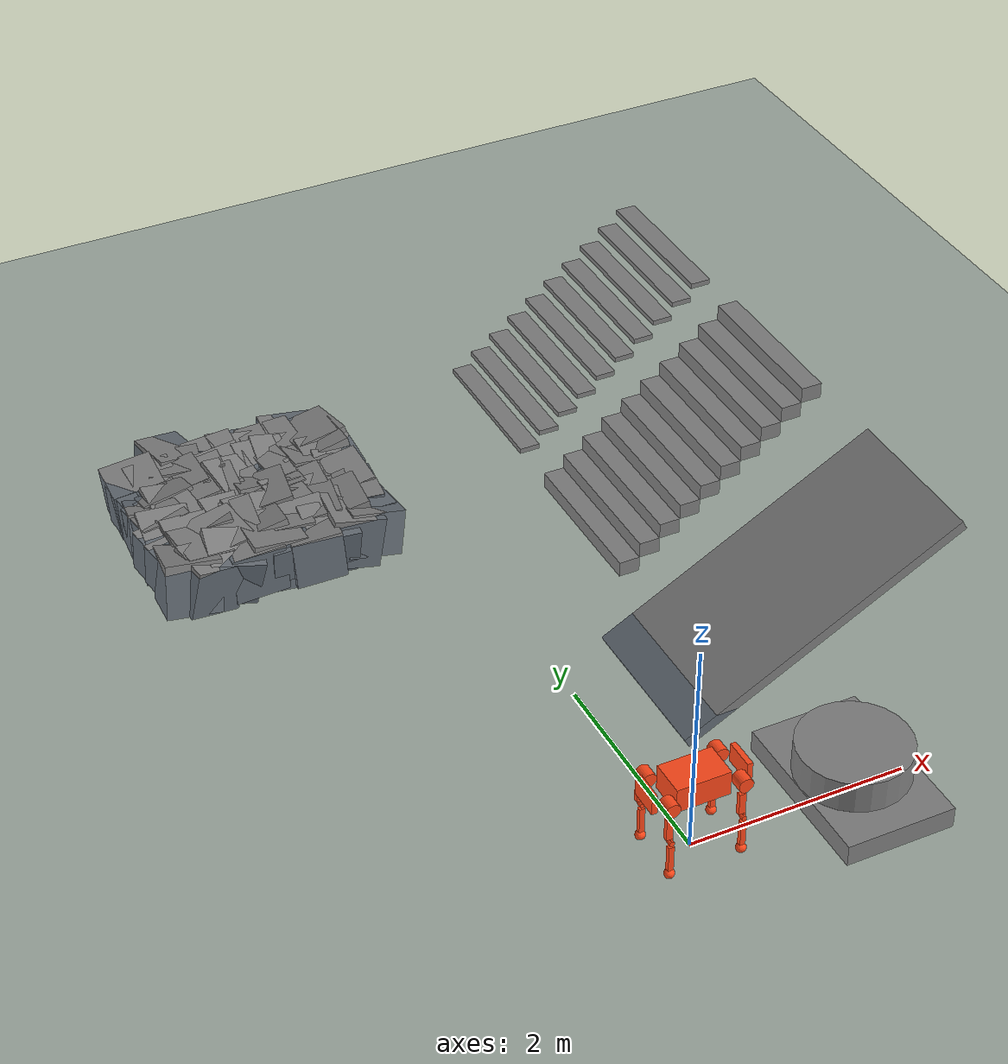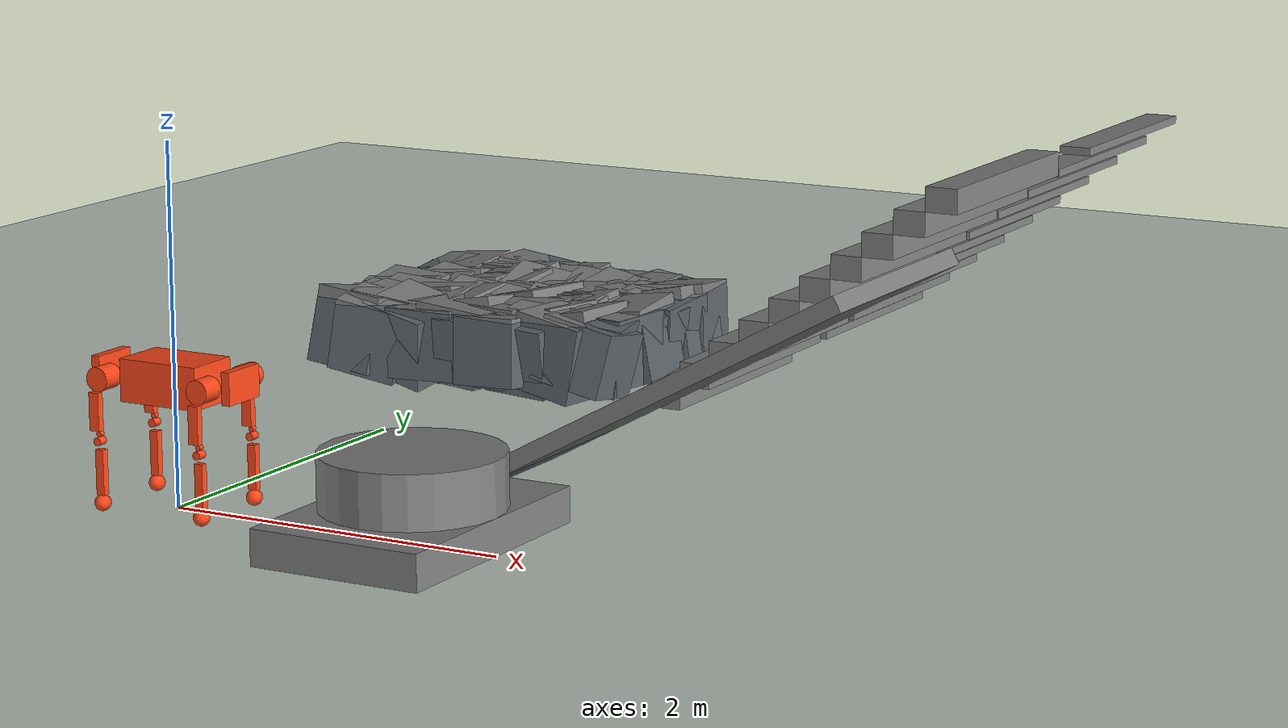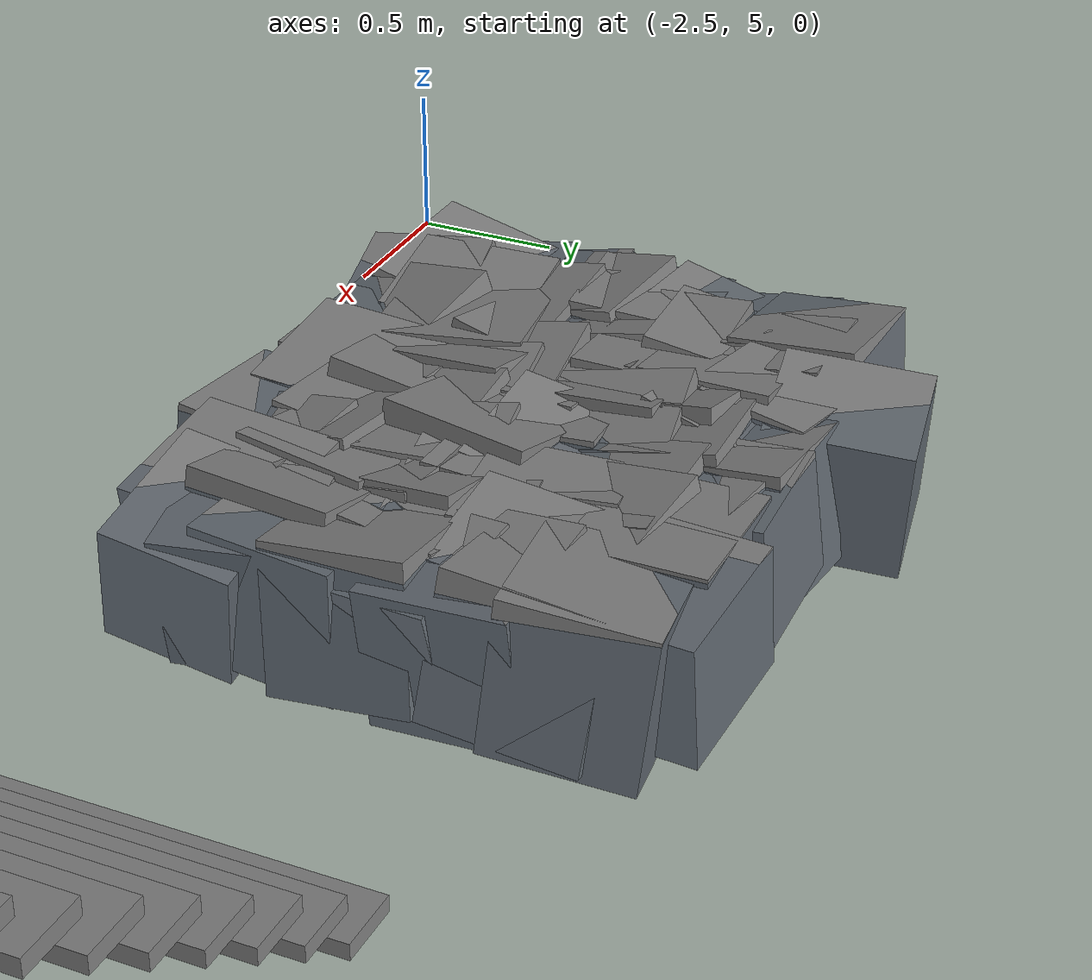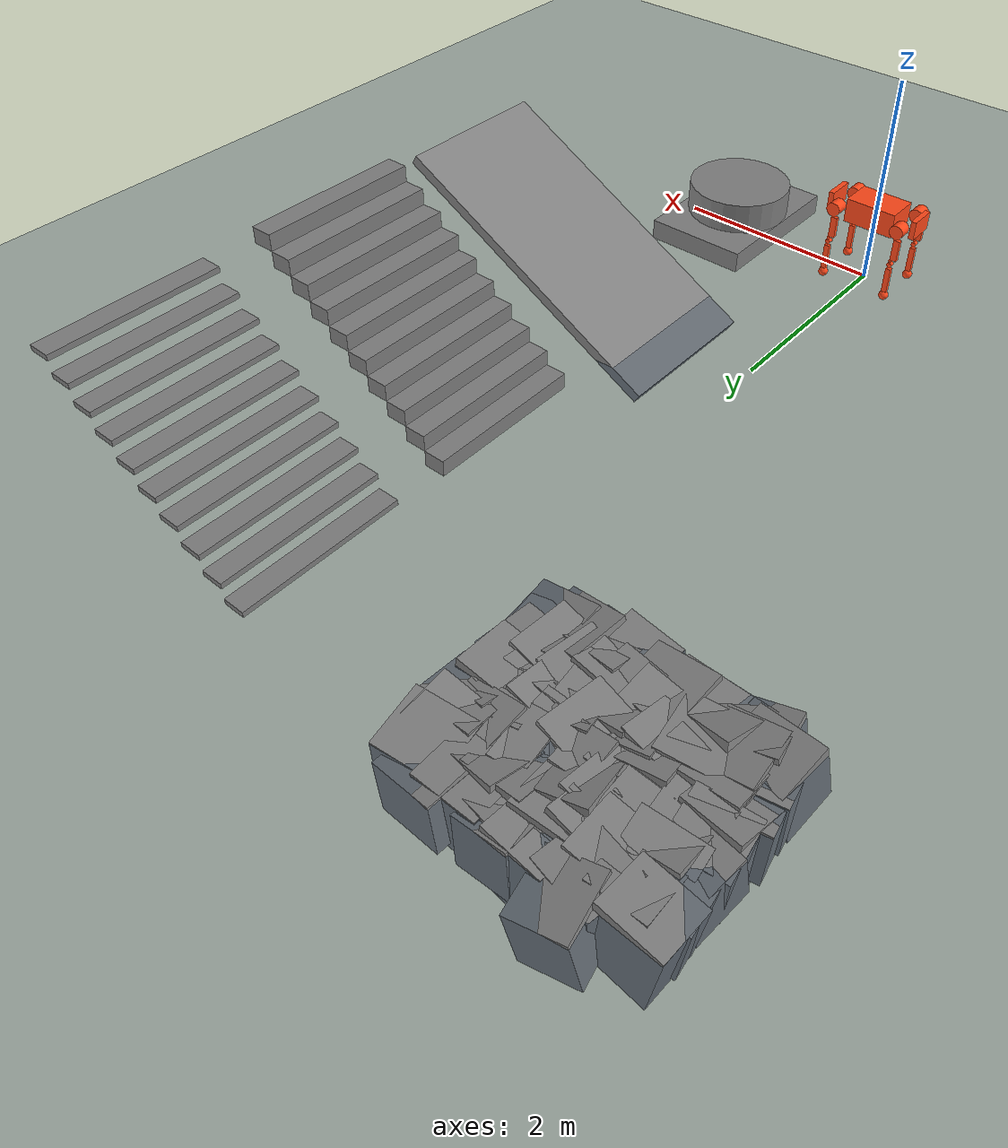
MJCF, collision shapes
<mujoco model="panda7 scene">
  <include file="panda7.xml" />

  <statistic center="0 0 0.1" extent="0.8" />

  <visual>
    <headlight diffuse="0.6 0.6 0.6" ambient="0.3 0.3 0.3" specular="0 0 0" />
    <rgba haze="0.15 0.25 0.35 1" />
    <global azimuth="-130" elevation="-20" />
  </visual>

  <asset>
    <texture type="skybox" builtin="gradient" rgb1="0.3 0.5 0.7" rgb2="0 0 0" width="512" height="3072" />
    <texture type="2d" name="groundplane" builtin="checker" mark="edge" rgb1="0.2 0.3 0.4" rgb2="0.1 0.2 0.3" markrgb="0.8 0.8 0.8" width="300" height="300" />
    <material name="groundplane" texture="groundplane" texuniform="true" texrepeat="5 5" reflectance="0.2" />
  </asset>
  <worldbody>
    <light pos="0 0 1.5" dir="0 0 -1" directional="true" />
    <geom name="floor" size="0 0 0.05" type="plane" material="groundplane" />
  <geom pos="1.5 0.0 0.1" type="box" size="0.5 0.75 0.1" quat="1.0 0.0 0.0 0.0" /><geom pos="1.5 0.0 0.25" type="cylinder" size="0.5 0.25 0.25" quat="1.0 0.0 0.0 0.0" /><geom pos="2.0 2.0 0.5" type="box" size="1.5 0.75 0.05" quat="0.968912421710645 0.0 -0.24740395925452296 0.0" /><geom pos="1.2 4.0 0.075" type="box" size="0.1 0.75 0.075" quat="1.0 0.0 0.0 0.0" /><geom pos="1.4 4.0 0.22499999999999998" type="box" size="0.1 0.75 0.075" quat="1.0 0.0 0.0 0.0" /><geom pos="1.6 4.0 0.375" type="box" size="0.1 0.75 0.075" quat="1.0 0.0 0.0 0.0" /><geom pos="1.8 4.0 0.525" type="box" size="0.1 0.75 0.075" quat="1.0 0.0 0.0 0.0" /><geom pos="2.0 4.0 0.675" type="box" size="0.1 0.75 0.075" quat="1.0 0.0 0.0 0.0" /><geom pos="2.2 4.0 0.8250000000000001" type="box" size="0.1 0.75 0.075" quat="1.0 0.0 0.0 0.0" /><geom pos="2.4 4.0 0.9750000000000001" type="box" size="0.1 0.75 0.075" quat="1.0 0.0 0.0 0.0" /><geom pos="2.5999999999999996 4.0 1.125" type="box" size="0.1 0.75 0.075" quat="1.0 0.0 0.0 0.0" /><geom pos="2.8 4.0 1.275" type="box" size="0.1 0.75 0.075" quat="1.0 0.0 0.0 0.0" /><geom pos="3.0 4.0 1.4249999999999998" type="box" size="0.1 0.75 0.075" quat="1.0 0.0 0.0 0.0" /><geom pos="1.2 6.0 0.075" type="box" size="0.1 0.75 0.024999999999999994" quat="1.0 0.0 0.0 0.0" /><geom pos="1.4 6.0 0.22499999999999998" type="box" size="0.1 0.75 0.024999999999999994" quat="1.0 0.0 0.0 0.0" /><geom pos="1.6 6.0 0.375" type="box" size="0.1 0.75 0.024999999999999994" quat="1.0 0.0 0.0 0.0" /><geom pos="1.8 6.0 0.525" type="box" size="0.1 0.75 0.024999999999999994" quat="1.0 0.0 0.0 0.0" /><geom pos="2.0 6.0 0.675" type="box" size="0.1 0.75 0.024999999999999994" quat="1.0 0.0 0.0 0.0" /><geom pos="2.2 6.0 0.8250000000000001" type="box" size="0.1 0.75 0.024999999999999994" quat="1.0 0.0 0.0 0.0" /><geom pos="2.4 6.0 0.9750000000000001" type="box" size="0.1 0.75 0.024999999999999994" quat="1.0 0.0 0.0 0.0" /><geom pos="2.5999999999999996 6.0 1.125" type="box" size="0.1 0.75 0.024999999999999994" quat="1.0 0.0 0.0 0.0" /><geom pos="2.8 6.0 1.275" type="box" size="0.1 0.75 0.024999999999999994" quat="1.0 0.0 0.0 0.0" /><geom pos="3.0 6.0 1.4249999999999998" type="box" size="0.1 0.75 0.024999999999999994" quat="1.0 0.0 0.0 0.0" /><geom pos="-2.3004568480001155 5.230133099821309 -0.25" type="box" size="0.2667418434232123 0.23249216246593754 0.2715603840154582" quat="0.9937514109759715 -0.09011523303710722 0.04584049177774514 -0.04728665003473938" /><geom pos="-2.3004568480001155 5.391515746812814 -0.25" type="box" size="0.2505265313539923 0.2412016313894627 0.2264599735410741" quat="0.9947855832976967 0.0430479213794962 0.004496328850963352 0.0923488102512985" /><geom pos="-2.3004568480001155 5.632708194664771 -0.25" type="box" size="0.2744568938089314 0.24992449427731162 0.22801643019685697" quat="0.9927267717486197 0.07160131296835394 -0.005361370104009311 0.09663366051940456" /><geom pos="-2.3004568480001155 5.798990692476225 -0.25" type="box" size="0.24325500647900072 0.2253568952181176 0.26629093934549475" quat="0.9942381647366705 0.09525301325965287 0.00794678229822832 -0.048519932987572345" /><geom pos="-2.3004568480001155 5.973541127254212 -0.25" type="box" size="0.2398510354361266 0.24285052907373605 0.26474659664781297" quat="0.9964084612238755 -0.04106533003165011 -0.0363795415854814 0.06450074437470632" /><geom pos="-2.3004568480001155 6.1770510315939235 -0.25" type="box" size="0.25720829764278585 0.23711879563200236 0.22878298749776027" quat="0.9937658772683013 -0.08834725270306294 0.0169573991826565 -0.06585279591592566" /><geom pos="-2.3004568480001155 6.407180520840007 -0.25" type="box" size="0.24754562515074474 0.25947160159627974 0.23928331743280107" quat="0.9958964892628885 0.04305664599570697 -0.045399565427206114 0.0653849169799509" /><geom pos="-2.3004568480001155 6.629340270719652 -0.25" type="box" size="0.2547590853159438 0.2314305783929404 0.268237133040538" quat="0.9972993669391019 0.044601800582484905 -0.05693885512370222 -0.012752210195468728" /><geom pos="-2.1403960142105545 5.169451405171494 -0.25" type="box" size="0.24860553780818326 0.2298644058617868 0.2557271181931712" quat="0.9914709750904385 0.03140703504746152 0.09964006753412274 0.07791508611647713" /><geom pos="-2.1403960142105545 5.365443034016214 -0.25" type="box" size="0.2291512386430681 0.25867181712863563 0.27347983292603073" quat="0.9971489888939771 -0.012801738465963004 0.06299248639499276 0.039521590273487665" /><geom pos="-2.1403960142105545 5.564856717019695 -0.25" type="box" size="0.23402731407731425 0.26579436660697997 0.2553901560684408" quat="0.9966301905043169 0.07818366455605208 0.024123866909938566 0.005798018388017237" /><geom pos="-2.1403960142105545 5.718290300524951 -0.25" type="box" size="0.26305873229776777 0.22976833293040352 0.2368622332864588" quat="0.9965179080213955 0.04103949917917902 0.06351715359390735 0.035119648334118" /><geom pos="-2.1403960142105545 5.937021976021513 -0.25" type="box" size="0.25829997576988234 0.23777318710233433 0.24146425783496483" quat="0.9934945982010286 0.06600502560370954 -0.06390951813814603 0.06728590812183728" /><geom pos="-2.1403960142105545 6.139922384241892 -0.25" type="box" size="0.23653538925627735 0.2436978135416446 0.240333142471557" quat="0.9965532548871666 0.03912419743215279 0.07314101139716957 0.0011400881032193077" /><geom pos="-2.1403960142105545 6.301771003196722 -0.25" type="box" size="0.2531389078197739 0.24480016352294456 0.2504805521908677" quat="0.9929737504129765 -0.09338521837305551 -0.05209114295204799 0.05068377261169358" /><geom pos="-2.1403960142105545 6.507865639382873 -0.25" type="box" size="0.2276301834358782 0.26649607136000125 0.257729055845175" quat="0.9978879006215207 0.06064426844548832 -0.013463574733080436 0.01899322651086425" /><geom pos="-1.8913580852312173 5.241268832370592 -0.25" type="box" size="0.2626219760929962 0.24411637158707777 0.2607077194593069" quat="0.9875355197654081 0.10169530993875045 0.08550302030532102 -0.0843853936223203" /><geom pos="-1.8913580852312173 5.471949466771439 -0.25" type="box" size="0.2602767497051143 0.273953920565642 0.27337839148294096" quat="0.9958713146560139 0.025763189149319767 -0.029456230012379816 0.08190795592381117" /><geom pos="-1.8913580852312173 5.710208626029221 -0.25" type="box" size="0.23410940494091387 0.2367080582839282 0.24568630976566702" quat="0.9897189155738972 -0.08734156791079449 -0.08044028159717216 -0.07973255148733269" /><geom pos="-1.8913580852312173 5.955348349118732 -0.25" type="box" size="0.23982897662316305 0.23800117277662278 0.2398222460937144" quat="0.9952418019176436 0.05430372873578345 -0.07866554086694699 0.018883681876785678" /><geom pos="-1.8913580852312173 6.185979720159965 -0.25" type="box" size="0.2462147197863695 0.23219524695551647 0.2711440904263542" quat="0.9982254065785714 -0.011567722302419247 -0.05642983491193701 0.015096330467764624" /><geom pos="-1.8913580852312173 6.4251426885516025 -0.25" type="box" size="0.23523910319808664 0.23480755129856565 0.2692163752500142" quat="0.9968448648091833 -0.003964163248548163 -0.07915930034105623 0.004290231091029004" /><geom pos="-1.8913580852312173 6.632084792336812 -0.25" type="box" size="0.2603836051705248 0.2293842626424212 0.26630834239542744" quat="0.9942544585183625 -0.03847116757612908 -0.015013446725097508 -0.09875544237721844" /><geom pos="-1.8913580852312173 6.8677842882805304 -0.25" type="box" size="0.22682173018977822 0.25620373771208627 0.2590106178200968" quat="0.9917966349039323 -0.04622336464814654 0.08055478391174208 0.08782802709142892" /><geom pos="-1.6798294713431876 5.216238277949043 -0.25" type="box" size="0.2632521212844899 0.2402658144953708 0.24841784794218005" quat="0.9997799409897189 -0.003276721590235065 -0.020688201582637684 -0.0011536921125319332" /><geom pos="-1.6798294713431876 5.386856114907906 -0.25" type="box" size="0.26672713061026987 0.24844660721532208 0.23313692749728976" quat="0.9952829473710711 0.07407221696833978 -0.013859958088202382 -0.061098796285541615" /><geom pos="-1.6798294713431876 5.591071097018706 -0.25" type="box" size="0.23246847630546943 0.25230360402816476 0.26125984794942364" quat="0.9935207484320158 0.05042174247872936 -0.08002771662650093 -0.06300583220658486" /><geom pos="-1.6798294713431876 5.741842048926222 -0.25" type="box" size="0.2535630104904315 0.24795359449084495 0.2463449562851746" quat="0.9940727390106978 0.07645301721135746 0.05888786747389042 0.0500654050161026" /><geom pos="-1.6798294713431876 5.905363306176914 -0.25" type="box" size="0.27072344768948214 0.22692489903878324 0.25032679935595825" quat="0.9977180574934882 0.021245636186625227 -0.03211110830763 -0.05546329793388168" /><geom pos="-1.6798294713431876 6.15296609717695 -0.25" type="box" size="0.27075061156330754 0.2600061673600183 0.2621071701382346" quat="0.9954121140543586 0.05159092291611383 -0.07045052751410034 -0.039112952323769316" /><geom pos="-1.6798294713431876 6.366743216660697 -0.25" type="box" size="0.23450857272964362 0.2407163023193743 0.2666025413500864" quat="0.9922247127582067 0.07575177513114786 -0.09279467536142899 -0.03377774683043695" /><geom pos="-1.6798294713431876 6.551643355280989 -0.25" type="box" size="0.26049187301894283 0.27022426120507964 0.23971723837257095" quat="0.9892928509960738 -0.10100280472577938 -0.0600366609488913 -0.0865660889014509" /><geom pos="-1.4765163584841376 5.243937334992851 -0.25" type="box" size="0.26136834696977396 0.2523172670818107 0.2654694500155096" quat="0.9985049365903822 -0.02950096022889073 0.04556436314956665 -0.00644001249885379" /><geom pos="-1.4765163584841376 5.480410750662077 -0.25" type="box" size="0.2440914363505842 0.25654690520997264 0.2583881995141055" quat="0.9933328589616501 -0.06913812509184492 -0.09136238609169695 -0.012754033616475648" /><geom pos="-1.4765163584841376 5.671235516827659 -0.25" type="box" size="0.267137477516981 0.23005560417856358 0.24452561156808555" quat="0.9940257850736071 0.051254350696765066 0.06721387336133489 0.06905088972068747" /><geom pos="-1.4765163584841376 5.845102562083532 -0.25" type="box" size="0.25941410073895627 0.24466997366532126 0.24443215657180062" quat="0.9984794775297112 0.04477338473757268 0.03200898692652765 0.0030824871571849344" /><geom pos="-1.4765163584841376 6.010575440437007 -0.25" type="box" size="0.26435857520274697 0.23236342580867092 0.24142028047228445" quat="0.9988398514879413 0.024463332973345336 -0.03172619531082579 0.026719748323726804" /><geom pos="-1.4765163584841376 6.23782046041485 -0.25" type="box" size="0.24731691273440778 0.25843666448052316 0.2710876107672864" quat="0.9885864324283745 0.08290722719127752 0.09790149547395594 0.07898452052114466" /><geom pos="-1.4765163584841376 6.44930631573619 -0.25" type="box" size="0.24193344533885286 0.23138582308048286 0.26168496711942596" quat="0.9958233764692439 0.07917403843656666 -0.02581247498391686 0.03742980964745321" /><geom pos="-1.4765163584841376 6.684566195548674 -0.25" type="box" size="0.2472173291178155 0.22976521336220676 0.24579788179058876" quat="0.9972709256786985 0.05344665943858395 -0.04768801960369878 -0.01788877237504326" /><geom pos="-1.2836828006996281 5.233446740475545 -0.25" type="box" size="0.270942684859463 0.26600855236486054 0.2296077997678793" quat="0.9990002946606846 0.04415559586693775 -0.005684427367154231 -0.004047456856993205" /><geom pos="-1.2836828006996281 5.446684944046352 -0.25" type="box" size="0.27057165150527335 0.26104170501325036 0.24775613085616044" quat="0.9973272818901999 -0.03585324604105891 -0.0027768638379429824 -0.0636013095230833" /><geom pos="-1.2836828006996281 5.611103486144901 -0.25" type="box" size="0.2581954354219156 0.2469368219651923 0.24036756098125636" quat="0.9936312966887875 0.09017870480124786 0.06642617029778168 -0.012337396017719982" /><geom pos="-1.2836828006996281 5.849517593571514 -0.25" type="box" size="0.27467145474022 0.27400068490578466 0.2735778012229137" quat="0.9916347981074018 -0.026604654441189333 -0.09638112447022586 -0.08162902909144508" /><geom pos="-1.2836828006996281 6.08784409988581 -0.25" type="box" size="0.2572816459813805 0.259301331764223 0.2497915058099132" quat="0.9950820743411886 -0.09067596276893386 0.03956525467724424 0.004911794284056946" /><geom pos="-1.2836828006996281 6.268302962193964 -0.25" type="box" size="0.26840679557573427 0.24608249031753818 0.23034148085004616" quat="0.9987264631057741 -0.005999555326392561 0.04977616980667998 0.005638275223276664" /><geom pos="-1.2836828006996281 6.452965455077986 -0.25" type="box" size="0.2696615447897929 0.26081661469724077 0.23398787146820288" quat="0.9989612372925927 0.017841649129852092 -0.019554827865776687 -0.03709084321393417" /><geom pos="-1.2836828006996281 6.654951201007293 -0.25" type="box" size="0.22785209566881853 0.27041411182510716 0.22695289141832098" quat="0.9976808082331692 0.03654751908061864 0.0573881794303459 -0.001969922316485568" /><geom pos="-1.1022240076453693 5.169887315101382 -0.25" type="box" size="0.24568156256299087 0.2635458084468657 0.23696692094202776" quat="0.9976285263249234 -0.04727185302576902 -0.02566280149473634 -0.042943171677399916" /><geom pos="-1.1022240076453693 5.372429939447899 -0.25" type="box" size="0.2516688550863544 0.23578708851703795 0.24914385885416668" quat="0.9941624724694053 0.09013134822717399 -0.04630034936782676 -0.03706205672502057" /><geom pos="-1.1022240076453693 5.6137494696611645 -0.25" type="box" size="0.22749023618822067 0.24285395850499641 0.24637028208799674" quat="0.9967312863374155 0.005751481746199076 -0.05486898441393531 0.059017436773105766" /><geom pos="-1.1022240076453693 5.770800416787369 -0.25" type="box" size="0.2276194600060337 0.2435732223750303 0.24204342448231905" quat="0.9920706838842173 0.06455834978420948 0.0818398501660238 0.0702155009627047" /><geom pos="-1.1022240076453693 6.010227875016116 -0.25" type="box" size="0.23543804149884645 0.2269013461561202 0.24892831056369055" quat="0.998711981938567 -0.03666909121332045 -0.03413771353158816 0.008023178719471372" /><geom pos="-1.1022240076453693 6.1826505134127485 -0.25" type="box" size="0.24899669756063647 0.26476302864941026 0.23114478496336716" quat="0.9953459379310479 0.017391324820533183 -0.06570106494388459 0.06831819472431061" /><geom pos="-1.1022240076453693 6.388783936685348 -0.25" type="box" size="0.25120043442125733 0.26689280714606495 0.24739435973617288" quat="0.9952950358990744 0.0890051431533475 0.03711428378869703 -0.009402443606032512" /><geom pos="-1.1022240076453693 6.587736073361409 -0.25" type="box" size="0.2642095458486848 0.24402513111878274 0.2283749318977764" quat="0.9945884112549138 0.06171449469705757 0.01930392852096236 -0.0813177206110156" /><geom pos="-0.9187514747556267 5.228003088997437 -0.25" type="box" size="0.24129840773289313 0.24455559893829074 0.2445571703602056" quat="0.9953979563394082 0.08620026031447912 0.017037154839366485 -0.03823818761429045" /><geom pos="-0.9187514747556267 5.477124560461694 -0.25" type="box" size="0.24144830521194344 0.24988466026108996 0.2605757117908711" quat="0.9930966738408729 -0.02303914715636593 -0.07543241677172038 -0.08682248904793939" /><geom pos="-0.9187514747556267 5.6503609706110804 -0.25" type="box" size="0.23011493841284475 0.26688543937158404 0.23459245932111464" quat="0.995309745085509 0.0812194368838277 -0.028988475523879075 -0.043835860854957456" /><geom pos="-0.9187514747556267 5.8167410379088915 -0.25" type="box" size="0.2696701537399713 0.22808315813449612 0.24632246265018862" quat="0.9941630275322185 0.03659276523626464 -0.09418317633389955 -0.03782027916336502" /><geom pos="-0.9187514747556267 5.973448532783488 -0.25" type="box" size="0.26529485159027155 0.2568090828246225 0.22616198518784458" quat="0.9934152082258639 -0.0668204374116078 0.015261332203502648 0.09180601804380455" /><geom pos="-0.9187514747556267 6.208232057412713 -0.25" type="box" size="0.2463750931460119 0.23519736105411657 0.2618256268798009" quat="0.9980851779059088 -0.01670862812995911 -3.238808720187859e-05 0.05955500265768949" /><geom pos="-0.9187514747556267 6.439579230099216 -0.25" type="box" size="0.2671845676845725 0.23031566769931494 0.24269863858722673" quat="0.9922913628004445 0.08627005615594627 0.0653962412457561 -0.060321309281323385" /><geom pos="-0.9187514747556267 6.633593518531561 -0.25" type="box" size="0.27010683807652197 0.24026832629919917 0.2557918997199297" quat="0.9999490997296441 0.00028597626760271176 -0.008743036015975394 0.005027473388523378" /><geom pos="-0.6893496373603325 5.248968856916747 -0.25" type="box" size="0.2534396264226809 0.2550821014195557 0.2650999344163818" quat="0.9951379017729395 -0.009374906590221065 0.08659926506304164 -0.04596993443455758" /><geom pos="-0.6893496373603325 5.461239078170235 -0.25" type="box" size="0.27229416577728716 0.26237025850176243 0.2609095281015494" quat="0.9938642581071668 -0.016468144238788375 -0.09891284963880534 -0.04667852674145426" /><geom pos="-0.6893496373603325 5.687178260089661 -0.25" type="box" size="0.23752403278908404 0.24697938830167748 0.22849345269591703" quat="0.9934662197384913 -0.04679303055164773 0.04759125915532222 -0.09257620959142457" /><geom pos="-0.6893496373603325 5.872882308537633 -0.25" type="box" size="0.24532351042284706 0.2346108686684232 0.23000406308837146" quat="0.9927088825119093 -0.020825844871975006 -0.07387314031868909 -0.0929414757079957" /><geom pos="-0.6893496373603325 6.041093594701471 -0.25" type="box" size="0.2400001363070752 0.23338893797592625 0.23790746686600803" quat="0.9938226730954234 0.05804194043958964 0.018064293769886098 0.09285100366754209" /><geom pos="-0.6893496373603325 6.255174847428153 -0.25" type="box" size="0.23526596901866062 0.24028315614672 0.25067741337911276" quat="0.9968794677864197 -0.0562851518151626 0.055258342000963814 0.003134330919540954" /><geom pos="-0.6893496373603325 6.482563337699631 -0.25" type="box" size="0.2371955841450388 0.23449361110299885 0.22578295347747088" quat="0.9983417083561725 0.019060355462012728 0.0390427253010296 -0.037765087146858146" /><geom pos="-0.6893496373603325 6.720404792567244 -0.25" type="box" size="0.2691396588773104 0.24560338138780002 0.22875047396233128" quat="0.9977277785730543 -0.00018196030407207167 0.05888258853415548 -0.0327427476190394" /><geom pos="-0.5024823808281569 5.243215256907448 -0.25" type="box" size="0.2664190000950855 0.23193429497031293 0.2256412468995084" quat="0.9923480752257597 -0.0775266795954823 0.096093780616666 -0.0009470340146058532" /><geom pos="-0.5024823808281569 5.408443418302384 -0.25" type="box" size="0.22988754041124168 0.23383904290144142 0.24112107194436588" quat="0.9950978972186256 0.02104571309984771 0.06552972397065362 0.07101484483907931" /><geom pos="-0.5024823808281569 5.593298346565085 -0.25" type="box" size="0.23937371319909267 0.2613467949248377 0.24575122985464729" quat="0.9984691487491184 -0.007621815772156767 0.010729111312567314 -0.053722928912984906" /><geom pos="-0.5024823808281569 5.833573467357344 -0.25" type="box" size="0.2621981400994321 0.24827277799235026 0.2599489001761954" quat="0.9965799738925856 0.0461064749899981 -0.06814681716564386 0.00765244473635177" /><geom pos="-0.5024823808281569 5.987211314681463 -0.25" type="box" size="0.23685424606606761 0.22901316218866397 0.22658193235149277" quat="0.992587295998121 0.042095349114379794 0.090020559870156 -0.06996241996058189" /><geom pos="-0.5024823808281569 6.191809900984576 -0.25" type="box" size="0.2697477262181022 0.26160032283159856 0.2514154359253294" quat="0.9987428184279926 0.03211553967794984 0.03713990933426557 -0.010099598227023016" /><geom pos="-0.5024823808281569 6.411285541920249 -0.25" type="box" size="0.26327819993915696 0.2714861589666563 0.2579565419996769" quat="0.9938745790994166 -0.05002470116842947 -0.097675298645099 0.01305321138870088" /><geom pos="-0.5024823808281569 6.5701617398718914 -0.25" type="box" size="0.26691018196306854 0.2535040767291905 0.26963989926936244" quat="0.9956469229609891 -0.050958369126028226 -0.03839181101974538 0.06794496494188768" /></worldbody>
</mujoco>

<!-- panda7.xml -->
<mujoco model="robot">
  <default>
    <default class="robot">
      <joint axis="0 1 0" damping="0.1" armature="0.01" frictionloss="0.2"/>

      <default class="abduction">
        <joint axis="1 0 0" range="-0.69 0.87"/>
        <motor ctrlrange="-160 160"/>
      </default>
      <default class="hip">
        <motor ctrlrange="-180 180"/>
        <default class="front_hip">
          <joint range="-1.78 3.40"/>
        </default>
        <default class="back_hip">
          <joint range="-1.78 3.40"/>
        </default>
      </default>
      <default class="knee">
        <joint range="-2.53 -0.45"/>
        <motor ctrlrange="-452 452"/>
      </default>
      <default class="visual">
        <geom material="visualgeom" contype="0" conaffinity="0" group="2" />
      </default>
      <default class="collision">
        <geom material="collision_material" condim="3" contype="0" conaffinity="1" priority="1" group="1" solref="0.005 1" solimp="0.99 0.999 1e-05" friction="1 0.01 0.01" />
      </default>
    </default>
  </default>

  <compiler angle="radian" />

  <asset>
    <material name="black" rgba="0.0 0.0 0.0 1.0" />
    <material name="blue" rgba="0.0 0.0 0.8 1.0" />
    <material name="green" rgba="0.0 0.8 0.0 1.0" />
    <material name="grey" rgba="0.2 0.2 0.2 1.0" />
    <material name="silver" rgba="0.9137254901960784 0.9137254901960784 0.8470588235294118 1.0" />
    <material name="orange" rgba="1.0 0.4235294117647059 0.0392156862745098 1.0" />
    <material name="brown" rgba="0.8705882352941177 0.8117647058823529 0.7647058823529411 1.0" />
    <material name="red" rgba="0.8 0.0 0.0 1.0" />
    <material name="white" rgba="1.0 1.0 1.0 1.0" />
    <material name="default_material" rgba="0.7 0.7 0.7 1" />
    <material name="collision_material" rgba="1.0 0.28 0.1 0.9" />
    <mesh name="trunk.stl" file="trunk.stl" scale="1 1 1" />
    <mesh name="d435i.stl" file="d435i.stl" scale="1 1 1" />
    <mesh name="hip.stl" file="hip.stl" scale="1 1 1" />
    <mesh name="thigh_mirror.stl" file="thigh_mirror.stl" scale="1 1 1" />
    <mesh name="calf.stl" file="calf.stl" scale="1 1 1" />
    <mesh name="thigh.stl" file="thigh.stl" scale="1 1 1" />
  </asset>

  <worldbody>
    <body name="base" pos="0.00000000 0.00000000 0.72500000" quat="1 0 0 0" childclass="robot">
      <inertial pos="0.0014923112 -0.0014397771 -0.0094584260"
          quat="1 0 0 0"
          mass="41.377848"
          diaginertia="0.475 1.890 2.105"/>
      <freejoint name="floating_base" />
      <site name="imu" pos="0 0 0" />
      <geom name="base_collision" pos="0 0 -0.0125" quat="1.0 0.0 0.0 0.0" type="box" size="0.245 0.16 0.1175" class="collision" />
      <geom name="base_visual" pos="0 0 0" quat="1.0 0.0 0.0 0.0" material="default_material" type="mesh" mesh="trunk.stl"  class="visual" />
      <body name="head_link" pos="0.425 0 0.005" quat="1.0 0.0 0.0 0.0">
        <inertial pos="0.0 0.0 0.0" quat="1.0 0.0 0.0 0.0" mass="0.12" diaginertia="9.72e-05 9.72e-05 9.72e-05" />
        <geom name="head_link_collision" pos="0.0 0.0 0.0" quat="1.0 0.0 0.0 0.0" type="box" size="0.025 0.135 0.09" class="collision" />
      </body>
      <body name="tail_link" pos="-0.425 0 0.005" quat="1.0 0.0 0.0 0.0">
        <inertial pos="0.0 0.0 0.0" quat="1.0 0.0 0.0 0.0" mass="0.12" diaginertia="9.72e-05 9.72e-05 9.72e-05" />
        <geom name="tail_link_collision" pos="0.0 0.0 0.0" quat="1.0 0.0 0.0 0.0" type="box" size="0.025 0.135 0.09" class="collision" />
      </body>
      <body name="head_up_realsense_link" pos="0.4462 0 0.071" quat="0.5003981633553667 -0.49999984146591736 0.49960183664463337 -0.49999984146591736">
        <inertial pos="0.0 0.0 0.0" quat="1.0 0.0 0.0 0.0" mass="4.19E-15" diaginertia="1.68e-27 1.68e-27 1.68e-27" />
        <geom name="head_up_realsense_link_visual" pos="0 0 0" quat="1.0 0.0 0.0 0.0" material="grey" type="mesh" mesh="d435i.stl"  class="visual" />
      </body>
      <body name="head_down_realsense_link" pos="0.44048 0 -0.057" quat="0.3592831965364214 -0.6093551903790907 0.6088701376180053 -0.3589972035568865">
        <inertial pos="0.0 0.0 0.0" quat="1.0 0.0 0.0 0.0" mass="4.19E-15" diaginertia="1.68e-27 1.68e-27 1.68e-27" />
        <geom name="head_down_realsense_link_visual" pos="0 0 0" quat="1.0 0.0 0.0 0.0" material="grey" type="mesh" mesh="d435i.stl"  class="visual" />
      </body>

      <body name="FL_hip" pos="0.325 0.1125 0" quat="1.0 0.0 0.0 0.0">
        <joint name="FL_hip_joint" class="abduction"  />
        <inertial pos="-0.0011794 -0.02693 5.8859E-07" quat="1.0 0.0 0.0 0.0" mass="2.7264" diaginertia="0.0043529 0.0056391 0.0047569" />
        <geom name="FL_hip_visual" pos="0 0 0" quat="1.0 0.0 0.0 0.0" material="orange" type="mesh" mesh="hip.stl"  class="visual" />
        <body name="FL_thigh" pos="0 0.126375 0" quat="1.0 0.0 0.0 0.0">
          <joint name="FL_thigh_joint" class="front_hip" />
          <inertial pos="0.008023 -0.0407086 -0.0477057" quat="1.0 0.0 0.0 0.0" mass="4.5843711" diaginertia="0.0568903 0.055707534 0.0119193" />
          <geom name="FL_thigh_collision_0" pos="0 -0.046 0" quat="0.7073882691671998 0.706825181105366 0.0 0.0" type="cylinder" size="0.067 0.0645" class="collision" />
          <geom name="FL_thigh_collision_1" pos="-0.026 0 -0.18" quat="1.0 0.0 0.0 0.0" type="box" size="0.03 0.02 0.105" class="collision" />
          <geom name="FL_thigh_visual" pos="0 0 0" quat="1.0 0.0 0.0 0.0" material="orange" type="mesh" mesh="thigh.stl"  class="visual" />
          <body name="FL_calf" pos="0 0 -0.34" quat="1.0 0.0 0.0 0.0">
            <joint name="FL_calf_joint" class="knee" />
            <inertial pos="-4.1136934E-03 2.2641006E-06 -0.18227639" quat="1.0 0.0 0.0 0.0" mass="0.82150729" diaginertia="0.017546212 0.017775449 0.00042961251" />
            <geom name="FL_calf_collision_0" pos="0.0 0 -0.17" quat="0.7071067811865476 0.0 0.7071067811865475 0.0" type="box" size="0.125 0.02 0.02475" class="collision" />
            <geom name="FL_calf_collision_1" pos="-0.004 0 0" quat="0.7073882691671998 0.706825181105366 0.0 0.0" type="cylinder" size="0.023 0.027" class="collision" />
            <geom name="FL_calf_collision_2" pos="-0.001 0 0.04" quat="0.7073882691671998 0.706825181105366 0.0 0.0" type="cylinder" size="0.0146 0.015" class="collision" />
            <geom name="FL_calf_visual" pos="0 0 0" quat="1.0 0.0 0.0 0.0" material="orange" type="mesh" mesh="calf.stl"  class="visual" />
            <body name="FL_FOOT" pos="0 0 -0.34" quat="1.0 0.0 0.0 0.0">
              <inertial pos="0 0 0" mass="0.12" diaginertia="9.72e-05 9.72e-05 9.72e-05" />
              <geom name="FL_FOOT_collision" pos="0 0 0" quat="1.0 0.0 0.0 0.0" type="sphere" size="0.045" class="collision" />
            </body>
          </body>
        </body>
      </body>
      <body name="FR_hip" pos="0.325 -0.1125 0" quat="1.0 0.0 0.0 0.0">
        <joint name="FR_hip_joint" class="abduction" />
        <inertial pos="-0.0011794 0.02693 -5.8859E-07" quat="1.0 0.0 0.0 0.0" mass="2.7264" diaginertia="0.0043529 0.0056391 0.0047569" />
        <geom name="FR_hip_visual" pos="0 0 0" quat="6.123233995736766e-17 1.0 0.0 0.0" material="orange" type="mesh" mesh="hip.stl"  class="visual" />
        <body name="FR_thigh" pos="0 -0.126375 0" quat="1.0 0.0 0.0 0.0">
          <joint name="FR_thigh_joint" class="front_hip" />
          <inertial pos="0.008023 0.0407086 -0.0477057" quat="1.0 0.0 0.0 0.0" mass="4.5843711" diaginertia="0.0568903 0.055707534 0.0119193" />
          <geom name="FR_thigh_collision_0" pos="0 0.046 0" quat="0.7073882691671998 0.706825181105366 0.0 0.0" type="cylinder" size="0.067 0.0645" class="collision" />
          <geom name="FR_thigh_collision_1" pos="-0.026 0 -0.18" quat="1.0 0.0 0.0 0.0" type="box" size="0.03 0.02 0.105" class="collision" />
          <geom name="FR_thigh_visual" pos="0 0 0" quat="1.0 0.0 0.0 0.0" material="orange" type="mesh" mesh="thigh_mirror.stl"  class="visual" />
          <body name="FR_calf" pos="0 0 -0.34" quat="1.0 0.0 0.0 0.0">
            <joint name="FR_calf_joint" class="knee" />
            <inertial pos="-4.1136934E-03 -2.2641006E-06 -0.18227639" quat="1.0 0.0 0.0 0.0" mass="0.82150729" diaginertia="0.017546212 0.017775449 0.00042961251" />
            <geom name="FR_calf_collision_0" pos="0.0 0 -0.17" quat="0.7071067811865476 0.0 0.7071067811865475 0.0" type="box" size="0.125 0.02 0.02475" class="collision" />
            <geom name="FR_calf_collision_1" pos="-0.004 0 0" quat="0.7073882691671998 0.706825181105366 0.0 0.0" type="cylinder" size="0.023 0.027" class="collision" />
            <geom name="FR_calf_collision_2" pos="-0.001 0 0.04" quat="0.7073882691671998 0.706825181105366 0.0 0.0" type="cylinder" size="0.0146 0.015" class="collision" />
            <geom name="FR_calf_visual" pos="0 0 0" quat="1.0 0.0 0.0 0.0" material="orange" type="mesh" mesh="calf.stl"  class="visual" />
            <body name="FR_FOOT" pos="0 0 -0.34" quat="1.0 0.0 0.0 0.0">
              <inertial pos="0 0 0" mass="0.12" diaginertia="9.72e-05 9.72e-05 9.72e-05" />
              <geom name="FR_FOOT_collision" pos="0 0 0" quat="1.0 0.0 0.0 0.0" type="sphere" size="0.045" class="collision" />
            </body>
          </body>
        </body>
      </body>
      <body name="RL_hip" pos="-0.325 0.1125 0" quat="1.0 0.0 0.0 0.0">
        <joint name="RL_hip_joint" class="abduction" />
        <inertial pos="0.0011794 -0.02693 -5.8859E-07" quat="1.0 0.0 0.0 0.0" mass="2.7264" diaginertia="0.0043529 0.0056391 0.0047569" />
        <geom name="RL_hip_visual" pos="0 0 0" quat="6.123233995736766e-17 0.0 1.0 0.0" material="orange" type="mesh" mesh="hip.stl"  class="visual" />
        <body name="RL_thigh" pos="0 0.126375 0" quat="1.0 0.0 0.0 0.0">
          <joint name="RL_thigh_joint" class="back_hip" />
          <inertial pos="0.008023 -0.0407086 -0.0477057" quat="1.0 0.0 0.0 0.0" mass="4.5843711" diaginertia="0.0568903 0.055707534 0.0119193" />
          <geom name="RL_thigh_collision_0" pos="0 -0.046 0" quat="0.7073882691671998 0.706825181105366 0.0 0.0" type="cylinder" size="0.067 0.0645" class="collision" />
          <geom name="RL_thigh_collision_1" pos="-0.026 0 -0.18" quat="1.0 0.0 0.0 0.0" type="box" size="0.03 0.02 0.105" class="collision" />
          <geom name="RL_thigh_visual" pos="0 0 0" quat="1.0 0.0 0.0 0.0" material="orange" type="mesh" mesh="thigh.stl"  class="visual" />
          <body name="RL_calf" pos="0 0 -0.34" quat="1.0 0.0 0.0 0.0">
            <joint name="RL_calf_joint" class="knee" />
            <inertial pos="-4.1136934E-03 2.2641006E-06 -0.18227639" quat="1.0 0.0 0.0 0.0" mass="0.82150729" diaginertia="0.017546212 0.017775449 0.00042961251" />
            <geom name="RL_calf_collision_0" pos="0.0 0 -0.17" quat="0.7071067811865476 0.0 0.7071067811865475 0.0" type="box" size="0.125 0.02 0.02475" class="collision" />
            <geom name="RL_calf_collision_1" pos="-0.004 0 0" quat="0.7073882691671998 0.706825181105366 0.0 0.0" type="cylinder" size="0.023 0.027" class="collision" />
            <geom name="RL_calf_collision_2" pos="-0.001 0 0.04" quat="0.7073882691671998 0.706825181105366 0.0 0.0" type="cylinder" size="0.0146 0.015" class="collision" />
            <geom name="RL_calf_visual" pos="0 0 0" quat="1.0 0.0 0.0 0.0" material="orange" type="mesh" mesh="calf.stl"  class="visual" />
            <body name="RL_FOOT" pos="0 0 -0.34" quat="1.0 0.0 0.0 0.0">
              <inertial pos="0 0 0" mass="0.12" diaginertia="9.72e-05 9.72e-05 9.72e-05" />
              <geom name="RL_FOOT_collision" pos="0 0 0" quat="1.0 0.0 0.0 0.0" type="sphere" size="0.045" class="collision" />
            </body>
          </body>
        </body>
      </body>
      <body name="RR_hip" pos="-0.325 -0.1125 0" quat="1.0 0.0 0.0 0.0">
        <joint name="RR_hip_joint" class="abduction"  />
        <inertial pos="0.0011794 0.02693 5.8859E-07" quat="1.0 0.0 0.0 0.0" mass="2.7264" diaginertia="0.0043529 0.0056391 0.0047569" />
        <geom name="RR_hip_visual" pos="0 0 0" quat="3.749399456654644e-33 6.123233995736766e-17 6.123233995736766e-17 -1.0" material="orange" type="mesh" mesh="hip.stl"  class="visual" />
        <body name="RR_thigh" pos="0 -0.126375 0" quat="1.0 0.0 0.0 0.0">
          <joint name="RR_thigh_joint" class="back_hip"  />
          <inertial pos="0.008023 0.0407086 -0.0477057" quat="1.0 0.0 0.0 0.0" mass="4.5843711" diaginertia="0.0568903 0.055707534 0.0119193" />
          <geom name="RR_thigh_collision_0" pos="0 0.046 0" quat="0.7073882691671998 0.706825181105366 0.0 0.0" type="cylinder" size="0.067 0.0645" class="collision" />
          <geom name="RR_thigh_collision_1" pos="-0.026 0 -0.18" quat="1.0 0.0 0.0 0.0" type="box" size="0.03 0.02 0.105" class="collision" />
          <geom name="RR_thigh_visual" pos="0 0 0" quat="1.0 0.0 0.0 0.0" material="orange" type="mesh" mesh="thigh_mirror.stl"  class="visual" />
          <body name="RR_calf" pos="0 0 -0.34" quat="1.0 0.0 0.0 0.0">
            <joint name="RR_calf_joint" class="knee" />
            <inertial pos="-4.1136934E-03 -2.2641006E-06 -0.18227639" quat="1.0 0.0 0.0 0.0" mass="0.82150729" diaginertia="0.017546212 0.017775449 0.00042961251" />
            <geom name="RR_calf_collision_0" pos="0.0 0 -0.17" quat="0.7071067811865476 0.0 0.7071067811865475 0.0" type="box" size="0.125 0.02 0.02475" class="collision" />
            <geom name="RR_calf_collision_1" pos="-0.004 0 0" quat="0.7073882691671998 0.706825181105366 0.0 0.0" type="cylinder" size="0.023 0.027" class="collision" />
            <geom name="RR_calf_collision_2" pos="-0.001 0 0.04" quat="0.7073882691671998 0.706825181105366 0.0 0.0" type="cylinder" size="0.0146 0.015" class="collision" />
            <geom name="RR_calf_visual" pos="0 0 0" quat="1.0 0.0 0.0 0.0" material="orange" type="mesh" mesh="calf.stl"  class="visual" />
            <body name="RR_FOOT" pos="0 0 -0.34" quat="1.0 0.0 0.0 0.0">
              <inertial pos="0 0 0" mass="0.12" diaginertia="9.72e-05 9.72e-05 9.72e-05" />
              <geom name="RR_FOOT_collision" pos="0 0 0" quat="1.0 0.0 0.0 0.0" type="sphere" size="0.045" class="collision" />
            </body>
          </body>
        </body>
      </body>
    </body>
  </worldbody>

  <actuator>

    <motor class="abduction" name="FL_hip_joint_ctrl" joint="FL_hip_joint"  />
    <motor class="hip" name="FL_thigh_joint_ctrl" joint="FL_thigh_joint" />
    <motor class="knee" name="FL_calf_joint_ctrl" joint="FL_calf_joint" />

    <motor class="abduction" name="FR_hip_joint_ctrl" joint="FR_hip_joint" />
    <motor class="hip" name="FR_thigh_joint_ctrl" joint="FR_thigh_joint" />
    <motor class="knee" name="FR_calf_joint_ctrl" joint="FR_calf_joint" />

    <motor class="abduction" name="RL_hip_joint_ctrl" joint="RL_hip_joint" />
    <motor class="hip" name="RL_thigh_joint_ctrl" joint="RL_thigh_joint" />
    <motor class="knee" name="RL_calf_joint_ctrl" joint="RL_calf_joint" />

    <motor class="abduction" name="RR_hip_joint_ctrl" joint="RR_hip_joint" />
    <motor class="hip" name="RR_thigh_joint_ctrl" joint="RR_thigh_joint" />
    <motor class="knee" name="RR_calf_joint_ctrl" joint="RR_calf_joint" />
  </actuator>

  <sensor>

    <jointpos name="FL_hip_pos" joint="FL_hip_joint" />
    <jointpos name="FL_thigh_pos" joint="FL_thigh_joint" />
    <jointpos name="FL_calf_pos" joint="FL_calf_joint" />

    <jointpos name="FR_hip_pos" joint="FR_hip_joint" />
    <jointpos name="FR_thigh_pos" joint="FR_thigh_joint" />
    <jointpos name="FR_calf_pos" joint="FR_calf_joint" />

    <jointpos name="RL_hip_pos" joint="RL_hip_joint" />
    <jointpos name="RL_thigh_pos" joint="RL_thigh_joint" />
    <jointpos name="RL_calf_pos" joint="RL_calf_joint" />

    <jointpos name="RR_hip_pos" joint="RR_hip_joint" />
    <jointpos name="RR_thigh_pos" joint="RR_thigh_joint" />
    <jointpos name="RR_calf_pos" joint="RR_calf_joint" />

    <jointvel name="FL_hip_vel" joint="FL_hip_joint" />
    <jointvel name="FL_thigh_vel" joint="FL_thigh_joint" />
    <jointvel name="FL_calf_vel" joint="FL_calf_joint" />

    <jointvel name="FR_hip_vel" joint="FR_hip_joint" />
    <jointvel name="FR_thigh_vel" joint="FR_thigh_joint" />
    <jointvel name="FR_calf_vel" joint="FR_calf_joint" />

    <jointvel name="RL_hip_vel" joint="RL_hip_joint" />
    <jointvel name="RL_thigh_vel" joint="RL_thigh_joint" />
    <jointvel name="RL_calf_vel" joint="RL_calf_joint" />

    <jointvel name="RR_hip_vel" joint="RR_hip_joint" />
    <jointvel name="RR_thigh_vel" joint="RR_thigh_joint" />
    <jointvel name="RR_calf_vel" joint="RR_calf_joint" />

    <jointactuatorfrc name="FL_hip_torque" joint="FL_hip_joint" noise="0.01" />
    <jointactuatorfrc name="FL_thigh_torque" joint="FL_thigh_joint" noise="0.01" />
    <jointactuatorfrc name="FL_calf_torque" joint="FL_calf_joint" noise="0.01" />

    <jointactuatorfrc name="FR_hip_torque" joint="FR_hip_joint" noise="0.01" />
    <jointactuatorfrc name="FR_thigh_torque" joint="FR_thigh_joint" noise="0.01" />
    <jointactuatorfrc name="FR_calf_torque" joint="FR_calf_joint" noise="0.01" />

    <jointactuatorfrc name="RL_hip_torque" joint="RL_hip_joint" noise="0.01" />
    <jointactuatorfrc name="RL_thigh_torque" joint="RL_thigh_joint" noise="0.01" />
    <jointactuatorfrc name="RL_calf_torque" joint="RL_calf_joint" noise="0.01" />

    <jointactuatorfrc name="RR_hip_torque" joint="RR_hip_joint" noise="0.01" />
    <jointactuatorfrc name="RR_thigh_torque" joint="RR_thigh_joint" noise="0.01" />
    <jointactuatorfrc name="RR_calf_torque" joint="RR_calf_joint" noise="0.01" />

    <framequat name="imu_quat" objtype="site" objname="imu" />
    <gyro name="imu_gyro" site="imu" />
    <accelerometer name="imu_acc" site="imu" />

    <framepos name="frame_pos" objtype="site" objname="imu" />
    <framelinvel name="frame_vel" objtype="site" objname="imu" />

  </sensor>
</mujoco>
